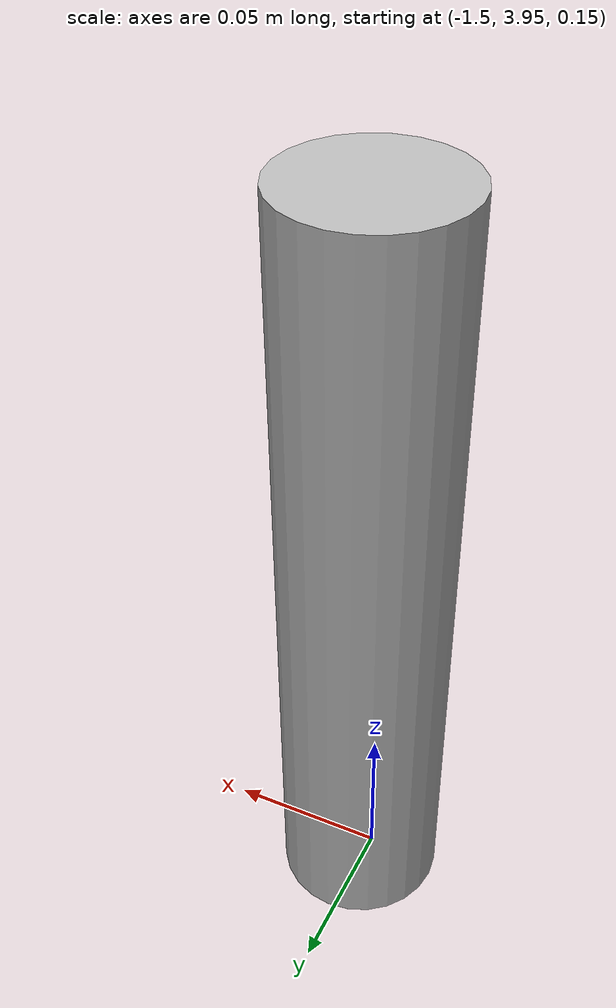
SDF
<?xml version='1.0'?>
<sdf version='1.6'>
  <model name='small_beer'>
    <link name='link'>
      <pose>0 0 0.080 0 0 0</pose>
      <inertial>
        <mass>0.010</mass>
        <inertia>
          <ixx>4.7583e-005</ixx>
          <ixy>0</ixy>
          <ixz>0</ixz>
          <iyy>4.7583e-005</iyy>
          <iyz>0</iyz>
          <izz>3.1250e-006</izz>
        </inertia>
      </inertial>
      <collision name='collision'>
        <geometry>
          <cylinder>
            <radius>0.025000</radius>
            <length>0.235000</length>
          </cylinder>
        </geometry>
        <surface>
          <friction>
            <ode>
              <mu>1000000.0</mu>
              <mu2>10000.0</mu2>
            </ode>
          </friction>
          <contact>
            <ode>
              <kp>1000000.0</kp>
              <kd>100.0</kd>
              <max_vel>1.0</max_vel>
              <min_depth>0.002</min_depth>
            </ode>
          </contact>
        </surface>
      </collision>
      <visual name='visual'>
        <geometry>
          <cylinder>
            <radius>0.025000</radius>
            <length>0.235000</length>
          </cylinder>
        </geometry>
        <material>
          <script>
            <uri>model://forca/objeto/small_beer/materials/scripts</uri>
            <uri>model://forca/objeto/small_beer/materials/textures</uri>
            <name>Beer/Diffuse</name>
          </script>
        </material>
      </visual>
    </link>
    <pose frame=''>-1.5 3.96 0.195 0 0 0</pose>
  </model>
</sdf>
